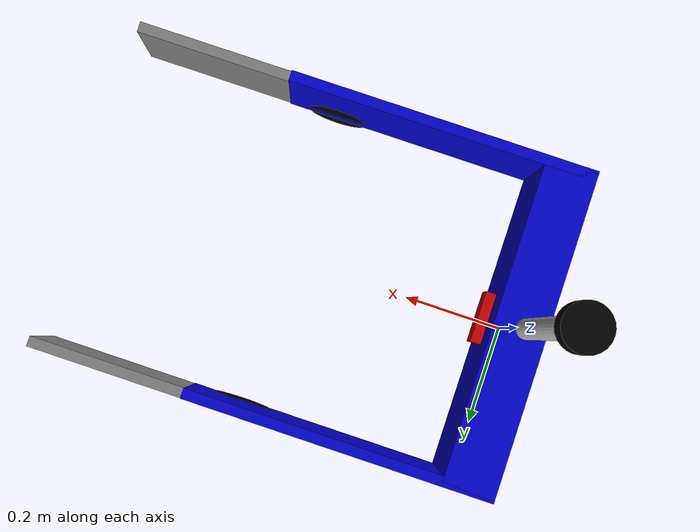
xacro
<?xml version="1.0"?>
<robot xmlns:xacro="http://www.ros.org/wiki/xacro" name="u_shaped_collector_v2">

  <!--                           PROPERTIES (CONSTANTS)                        -->

  <!-- Base Dimensions -->
  <xacro:property name="base_len" value="0.1"/>
  <xacro:property name="base_width" value="0.63"/>
  <xacro:property name="base_height" value="0.2"/>
  <xacro:property name="base_mass" value="10.0"/>

  <!-- U-Arm Dimensions -->
  <xacro:property name="arm_len" value="0.6"/>
  <xacro:property name="arm_thick" value="0.02"/>
  <xacro:property name="arm_height" value="0.2"/>
  <xacro:property name="arm_y_offset" value="0.31"/>
  <xacro:property name="arm_x_offset" value="0.250"/>

  <!-- Wheel Dimensions -->
  <xacro:property name="wheel_radius" value="0.06"/>
  <xacro:property name="wheel_width" value="0.02"/>
  <xacro:property name="wheel_mass" value="0.5"/>
  <xacro:property name="wheel_x_offset" value="0.45"/>
  <xacro:property name="wheel_y_offset" value="0.310"/>
  <xacro:property name="wheel_z_offset" value="-0.08"/>

  <!-- Caster Dimensions -->
  <xacro:property name="caster_radius" value="0.04"/>
  <xacro:property name="caster_mass" value="0.2"/>
  <xacro:property name="caster_x_offset" value="-0.01"/>
  <xacro:property name="caster_z_offset" value="-0.10"/>

  <!-- Gate Dimensions -->
  <xacro:property name="gate_thick" value="0.02"/>
  <xacro:property name="gate_len" value="0.30"/>
  <xacro:property name="gate_height" value="0.18"/>
  <xacro:property name="gate_mass" value="0.1"/>
  <xacro:property name="gate_x_mount" value="0.4"/>
  <xacro:property name="gate_y_mount" value="0.25"/>
  <xacro:property name="gate_travel" value="0.25"/>

  <!-- Lidar Stand Dimensions -->
  <xacro:property name="lidar_stand_height" value="0.4"/>
  <xacro:property name="lidar_stand_radius" value="0.02"/>
  <xacro:property name="lidar_stand_mass" value="0.3"/>

  <!-- Colors -->
  <material name="blue"><color rgba="0 0 0.8 1"/></material>
  <material name="black"><color rgba="0 0 0 1"/></material>
  <material name="red"><color rgba="0.8 0 0 1"/></material>
  <material name="silver"><color rgba="0.7 0.7 0.7 1"/></material>
  <material name="gray"><color rgba="0.5 0.5 0.5 1"/></material>

  <xacro:arg name="config_file" default="$(find spherebot_control)/config/controllers.yaml" />

  <!--                           INERTIA MACROS                                -->

  <xacro:macro name="box_inertia" params="m l w h">
    <inertial>
      <mass value="${m}"/>
      <inertia ixx="${(m/12) * (h*h + l*l)}" ixy="0.0" ixz="0.0"
               iyy="${(m/12) * (w*w + l*l)}" iyz="0.0"
               izz="${(m/12) * (w*w + h*h)}"/>
    </inertial>
  </xacro:macro>

  <xacro:macro name="cylinder_inertia" params="m r h">
    <inertial>
      <mass value="${m}"/>
      <inertia ixx="${(m/12) * (3*r*r + h*h)}" ixy="0" ixz="0"
               iyy="${(m/12) * (3*r*r + h*h)}" iyz="0"
               izz="${(m*r*r)/2}"/>
    </inertial>
  </xacro:macro>

  <xacro:macro name="sphere_inertia" params="m r">
    <inertial>
      <mass value="${m}"/>
      <inertia ixx="${(2/5) * m * r * r}" ixy="0" ixz="0"
               iyy="${(2/5) * m * r * r}" iyz="0"
               izz="${(2/5) * m * r * r}"/>
    </inertial>
  </xacro:macro>

  <!--                           COMPONENT MACROS                              -->

  <!-- Wheel Macro -->
  <xacro:macro name="wheel" params="prefix reflect">
    <link name="${prefix}_wheel">
      <visual>
        <geometry><cylinder length="${wheel_width}" radius="${wheel_radius}"/></geometry>
        <material name="black"/>
      </visual>
      <collision>
        <geometry><cylinder length="${wheel_width}" radius="${wheel_radius}"/></geometry>
      </collision>
      <xacro:cylinder_inertia m="${wheel_mass}" r="${wheel_radius}" h="${wheel_width}"/>
    </link>

    <gazebo reference="${prefix}_wheel">
      <mu1>200.0</mu1>
      <mu2>200.0</mu2>
      <kp>10000000.0</kp>
      <kd>100.0</kd>
      <minDepth>0.001</minDepth>
      <maxVel>1.0</maxVel>
    </gazebo>

    <joint name="${prefix}_wheel_joint" type="continuous">
      <parent link="base_link"/>
      <child link="${prefix}_wheel"/>
      <origin xyz="${wheel_x_offset} ${reflect * wheel_y_offset} ${wheel_z_offset}" rpy="-1.5708 0 0"/>
      <axis xyz="0 0 1"/>
    </joint>
  </xacro:macro>

<xacro:macro name="revolute_gate" params="prefix y_sign axis_sign">
  <link name="${prefix}_gate">
    <visual>
      <origin xyz="${gate_len/2} 0 0"/>
      <geometry>
        <box size="${gate_len} ${gate_thick} ${gate_height}"/>
      </geometry>
      <material name="gray"/>
    </visual>
    <collision>
      <origin xyz="${gate_len/2} 0 0"/>
      <geometry>
        <box size="${gate_len} ${gate_thick} ${gate_height}"/>
      </geometry>
    </collision>
    <xacro:box_inertia
      m="${gate_mass}"
      l="${gate_len}"
      w="${gate_thick}"
      h="${gate_height}"/>
  </link>
  <gazebo reference="${prefix}_gate">
  <material>Gazebo/Grey</material>
</gazebo>

  <joint name="${prefix}_gate_joint" type="revolute">
  <parent link="base_link"/>
  <child link="${prefix}_gate"/>

  <origin
    xyz="${arm_x_offset + arm_len/2} ${y_sign * arm_y_offset} 0"
    rpy="0 0 0"/>

  <axis xyz="0 0 ${axis_sign}"/>

  <limit lower="0.0" upper="1.57" effort="15.0" velocity="2.0"/>
  <dynamics damping="0.5" friction="0.3"/>
</joint>

</xacro:macro>

  <!--                           MAIN ROBOT STRUCTURE                          -->

  <link name="base_footprint"/>

  <joint name="base_joint" type="fixed">
    <parent link="base_footprint"/>
    <child link="base_link"/>
    <origin xyz="0 0 0.14" rpy="0 0 0"/>
  </joint>

  <link name="base_link">
    <!-- Center Body -->
    <visual>
      <origin xyz="0 0 0"/>
      <geometry><box size="${base_len} ${base_width} ${base_height}"/></geometry>
      <material name="blue"/>
    </visual>
    <collision>
      <origin xyz="0 0 0"/>
      <geometry><box size="${base_len} ${base_width} ${base_height}"/></geometry>
    </collision>
    <!-- Left Arm -->
    <visual>
      <origin xyz="${arm_x_offset} ${arm_y_offset} 0"/>
      <geometry><box size="${arm_len} ${arm_thick} ${arm_height}"/></geometry>
      <material name="blue"/>
    </visual>
    <collision>
      <origin xyz="${arm_x_offset} ${arm_y_offset} 0"/>
      <geometry><box size="${arm_len} ${arm_thick} ${arm_height}"/></geometry>
    </collision>
    <!-- Right Arm -->
    <visual>
      <origin xyz="${arm_x_offset} -${arm_y_offset} 0"/>
      <geometry><box size="${arm_len} ${arm_thick} ${arm_height}"/></geometry>
      <material name="blue"/>
    </visual>
    <collision>
      <origin xyz="${arm_x_offset} -${arm_y_offset} 0"/>
      <geometry><box size="${arm_len} ${arm_thick} ${arm_height}"/></geometry>
    </collision>
    <xacro:box_inertia m="${base_mass}" l="0.4" w="0.42" h="0.2"/>
  </link>

  <xacro:wheel prefix="left" reflect="1"/>
  <xacro:wheel prefix="right" reflect="-1"/>

  <link name="caster_wheel">
    <visual>
      <geometry><sphere radius="${caster_radius}"/></geometry>
      <material name="silver"/>
    </visual>
    <collision>
      <geometry><sphere radius="${caster_radius}"/></geometry>
    </collision>
    <xacro:sphere_inertia m="${caster_mass}" r="${caster_radius}"/>
  </link>
  <joint name="caster_joint" type="fixed">
    <parent link="base_link"/>
    <child link="caster_wheel"/>
    <origin xyz="${caster_x_offset} 0 ${caster_z_offset}"/>
  </joint>
  <gazebo reference="caster_wheel">
    <mu1>0.0</mu1><mu2>0.0</mu2>
    <material>Gazebo/Silver</material>
  </gazebo>

  <xacro:revolute_gate prefix="left"  y_sign="1"  axis_sign="-1"/>
  <xacro:revolute_gate prefix="right" y_sign="-1" axis_sign="1"/>

  <!--                       ROS 2 CONTROL INTERFACE                           -->

  <ros2_control name="GazeboSimSystem" type="system">
    <hardware>
      <plugin>gz_ros2_control/GazeboSimSystem</plugin>
    </hardware>

    <!-- Differential Drive Wheels -->
    <joint name="left_wheel_joint">
      <command_interface name="velocity">
        <param name="min">-10</param>
        <param name="max">10</param>
      </command_interface>
      <state_interface name="velocity"/>
      <state_interface name="position"/>
    </joint>
    <joint name="right_wheel_joint">
      <command_interface name="velocity">
        <param name="min">-10</param>
        <param name="max">10</param>
      </command_interface>
      <state_interface name="velocity"/>
      <state_interface name="position"/>
    </joint>

    <joint name="left_gate_joint">
  <command_interface name="position">
    <param name="min">0.0</param>
    <param name="max">1.57</param>
  </command_interface>
  <state_interface name="position"/>
  <state_interface name="velocity"/>
</joint>

<joint name="right_gate_joint">
  <command_interface name="position">
    <param name="min">0.0</param>
    <param name="max">1.57</param>
  </command_interface>
  <state_interface name="position"/>
  <state_interface name="velocity"/>
</joint>
  </ros2_control>

  <!--                           GAZEBO PLUGINS                                -->

  <gazebo>
    <!-- [UPDATED] ROS 2 Control Bridge -->
    <plugin filename="gz_ros2_control-system" name="gz_ros2_control::GazeboSimROS2ControlPlugin">
      <parameters>$(arg config_file)</parameters>
    </plugin>

    <plugin filename="gz-sim-imu-system" name="gz::sim::systems::Imu">
    </plugin>

    <plugin filename="gz-sim-sensors-system" name="gz::sim::systems::Sensors">
      <render_engine>ogre2</render_engine>
    </plugin>
  </gazebo>

  <!--                           SENSORS                                       -->

  <link name="lidar_stand_link">
  <visual>
    <origin xyz="0 0 ${lidar_stand_height/2}" rpy="0 0 0"/>
    <geometry>
      <cylinder length="${lidar_stand_height}" radius="${lidar_stand_radius}"/>
    </geometry>
    <material name="silver"/>
  </visual>

  <collision>
    <origin xyz="0 0 ${lidar_stand_height/2}" rpy="0 0 0"/>
    <geometry>
      <cylinder length="${lidar_stand_height}" radius="${lidar_stand_radius}"/>
    </geometry>
  </collision>

  <xacro:cylinder_inertia
    m="${lidar_stand_mass}"
    r="${lidar_stand_radius}"
    h="${lidar_stand_height}"/>
</link>

<joint name="lidar_stand_joint" type="fixed">
  <parent link="base_link"/>
  <child link="lidar_stand_link"/>
  <origin xyz="-0.01 0 0.1" rpy="0 0 0"/>
</joint>

  <!-- Lidar -->
  <link name="lidar_link">
    <visual>
      <geometry><cylinder length="0.04" radius="0.04"/></geometry>
      <material name="black"/>
    </visual>
    <collision>
      <geometry><cylinder length="0.04" radius="0.04"/></geometry>
    </collision>
    <xacro:cylinder_inertia m="0.1" r="0.04" h="0.04"/>
  </link>
  <joint name="lidar_joint" type="fixed">
  <parent link="lidar_stand_link"/>
  <child link="lidar_link"/>
  <origin xyz="0 0 ${lidar_stand_height + 0.02}" rpy="0 0 0"/>
</joint>

  <gazebo reference="lidar_link">
    <sensor name="lidar" type="gpu_lidar">
      <always_on>true</always_on>
      <visualize>true</visualize>
      <update_rate>10</update_rate>
      <topic>/scan</topic>
      <gz_frame_id>lidar_link</gz_frame_id>
      <ray>
        <scan>
          <horizontal>
            <samples>360</samples>
            <resolution>1</resolution>
            <min_angle>-3.14</min_angle>
            <max_angle>3.14</max_angle>
          </horizontal>
        </scan>
        <range>
          <min>0.05</min>
          <max>10.0</max>
          <resolution>0.01</resolution>
        </range>
      </ray>
    </sensor>
  </gazebo>

  <link name="camera_link">
    <visual>
      <geometry><box size="0.02 0.1 0.05"/></geometry>
      <material name="red"/>
    </visual>
  </link>
  <joint name="camera_joint" type="fixed">
    <parent link="base_link"/>
    <child link="camera_link"/>
    <origin xyz="0.06 0 0.0" rpy="0 0 0"/>
  </joint>
  <gazebo reference="camera_link">
    <sensor name="camera" type="camera">
      <always_on>true</always_on>
      <visualize>true</visualize>
      <update_rate>30</update_rate>
      <topic>camera/image_raw</topic>
      <gz_frame_id>camera_link</gz_frame_id>
      <camera name="intel_realsense_r200">
        <horizontal_fov>1.02974</horizontal_fov>
        <image>
          <width>1920</width>
          <height>1080</height>
          <format>R8G8B8</format>
        </image>
        <clip>
          <near>0.02</near>
          <far>300</far>
        </clip>
        <noise>
          <type>gaussian</type>
          <mean>0.0</mean>
          <stddev>0.007</stddev>
        </noise>
      </camera>
    </sensor>
  </gazebo>

  <link name="imu_link">
    <inertial>
      <mass value="0.01"/>
      <inertia ixx="0.0001" ixy="0" ixz="0" iyy="0.0001" iyz="0" izz="0.0001"/>
    </inertial>
  </link>
  <joint name="imu_joint" type="fixed">
    <parent link="base_link"/>
    <child link="imu_link"/>
    <origin xyz="0 0 0" rpy="0 0 0"/>
  </joint>
  <gazebo reference="imu_link">
    <sensor name="imu" type="imu">
      <always_on>true</always_on>
      <update_rate>100</update_rate>
      <topic>imu</topic>
      <gz_frame_id>imu_link</gz_frame_id>
      <imu>
        <angular_velocity>
          <x><noise type="gaussian"><mean>0.0</mean><stddev>2e-4</stddev></noise></x>
          <y><noise type="gaussian"><mean>0.0</mean><stddev>2e-4</stddev></noise></y>
          <z><noise type="gaussian"><mean>0.0</mean><stddev>2e-4</stddev></noise></z>
        </angular_velocity>
        <linear_acceleration>
          <x><noise type="gaussian"><mean>0.0</mean><stddev>1.7e-2</stddev></noise></x>
          <y><noise type="gaussian"><mean>0.0</mean><stddev>1.7e-2</stddev></noise></y>
          <z><noise type="gaussian"><mean>0.0</mean><stddev>1.7e-2</stddev></noise></z>
        </linear_acceleration>
      </imu>
    </sensor>
  </gazebo>

</robot>
